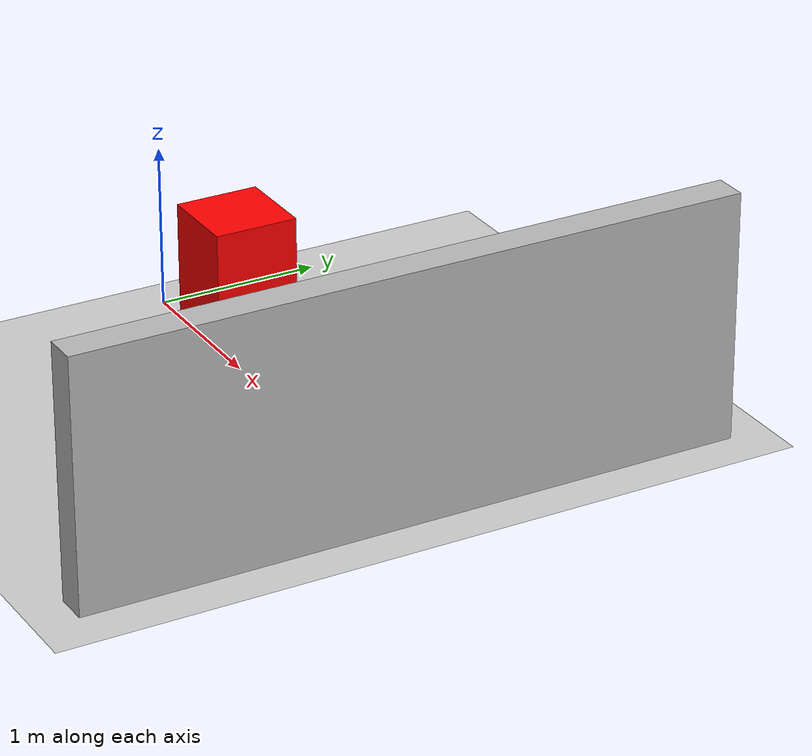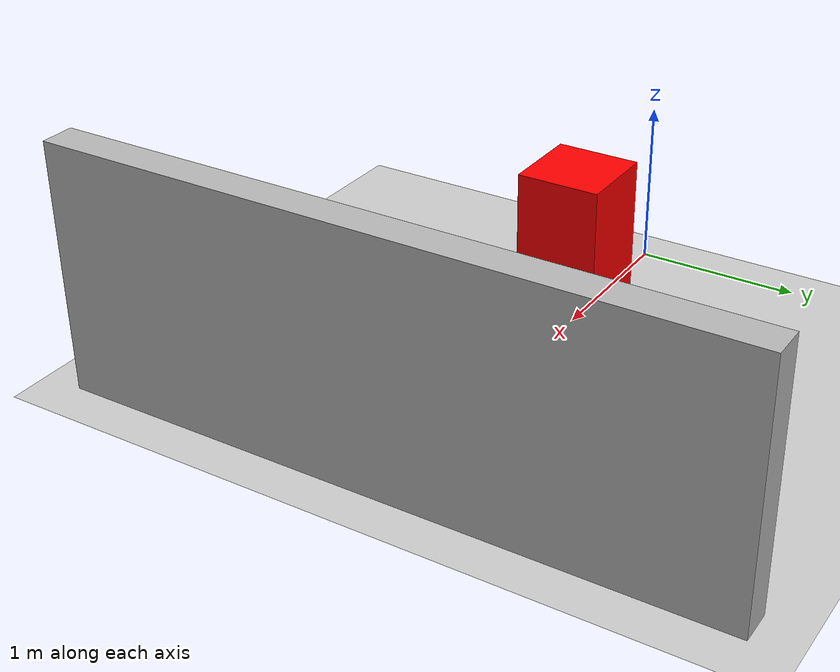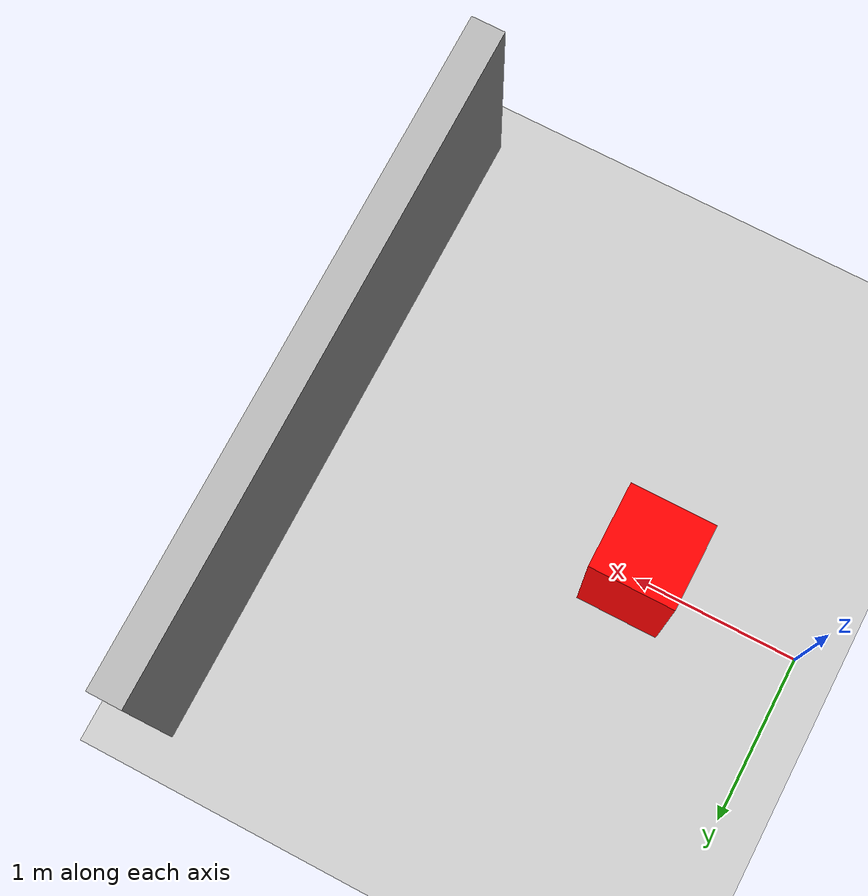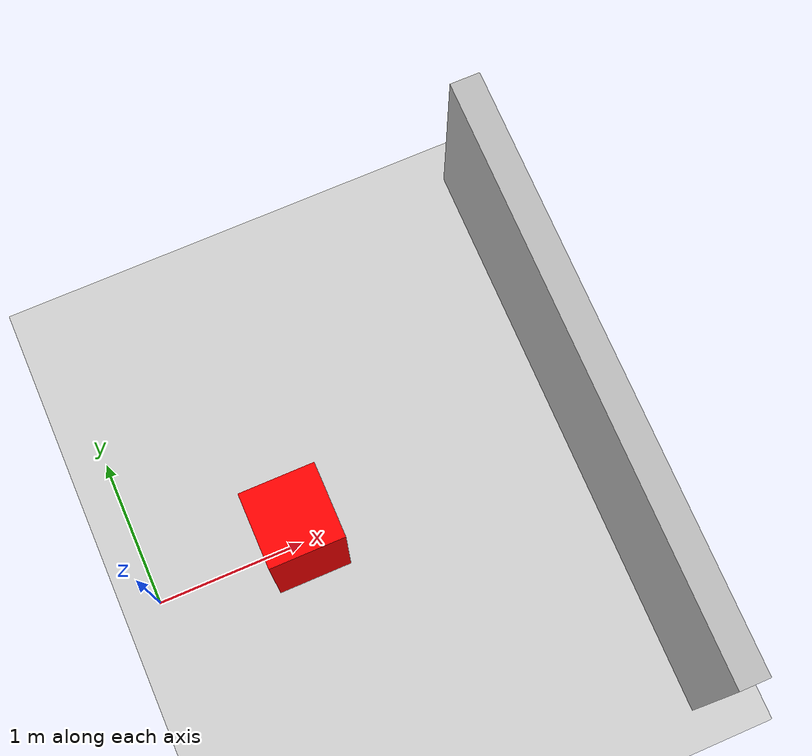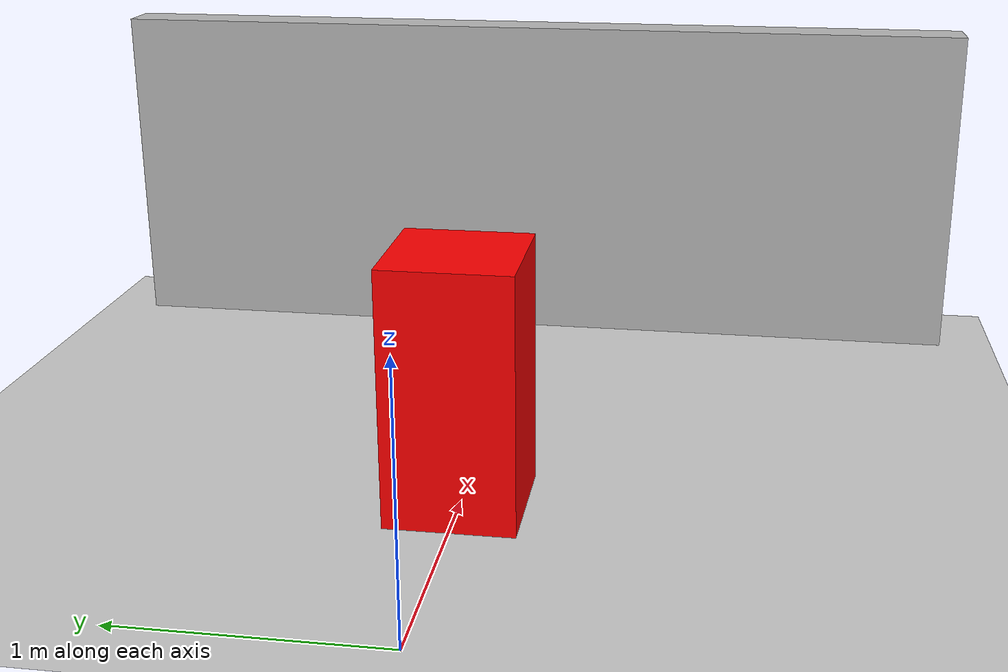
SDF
<?xml version="1.0" ?>

<sdf version="1.9">

  <world name="empty_world">

    <physics name="1ms" type="ode">
      <max_step_size>0.001</max_step_size>
      <real_time_factor>1.0</real_time_factor>
    </physics>

    <plugin
      filename="gz-sim-physics-system"
      name="gz::sim::systems::Physics"/>

    <plugin
      filename="gz-sim-user-commands-system"
      name="gz::sim::systems::UserCommands"/>

    <plugin
      filename="gz-sim-scene-broadcaster-system"
      name="gz::sim::systems::SceneBroadcaster"/>

    <plugin
      filename="gz-sim-sensors-system"
      name="gz::sim::systems::Sensors">
      <render_engine>ogre2</render_engine>
    </plugin>

    <light name="sun" type="directional">
      <cast_shadows>true</cast_shadows>
      <pose>0 0 10 0 0 0</pose>
    </light>

    <model name="ground_plane">
      <static>true</static>

      <link name="link">

        <collision name="collision">
          <geometry>
            <plane>
              <normal>0 0 1</normal>
              <size>100 100</size>
            </plane>
          </geometry>
        </collision>

        <visual name="visual">
          <geometry>
            <plane>
              <normal>0 0 1</normal>
              <size>100 100</size>
            </plane>
          </geometry>
        </visual>

      </link>

    </model>

    <model name="lidar_test_wall">
      <static>true</static>

      <pose>3 0 0.75 0 0 0</pose>

      <link name="wall">

        <collision name="collision">
          <geometry>
            <box>
              <size>0.2 4.0 1.5</size>
            </box>
          </geometry>
        </collision>

        <visual name="visual">
          <geometry>
            <box>
              <size>0.2 4.0 1.5</size>
            </box>
          </geometry>
        </visual>

      </link>
    </model>

    <model name="camera_test_block">
      <static>true</static>

      <pose>1.0 0 0.5 0 0 0</pose>

      <link name="link">

        <collision name="collision">
          <geometry>
            <box>
              <size>0.5 0.5 1.0</size>
            </box>
          </geometry>
        </collision>

        <visual name="visual">
          <geometry>
            <box>
              <size>0.5 0.5 1.0</size>
            </box>
          </geometry>

          <material>
            <ambient>1 0 0 1</ambient>
            <diffuse>1 0 0 1</diffuse>
          </material>
        </visual>

      </link>
    </model>
  </world>

</sdf>
